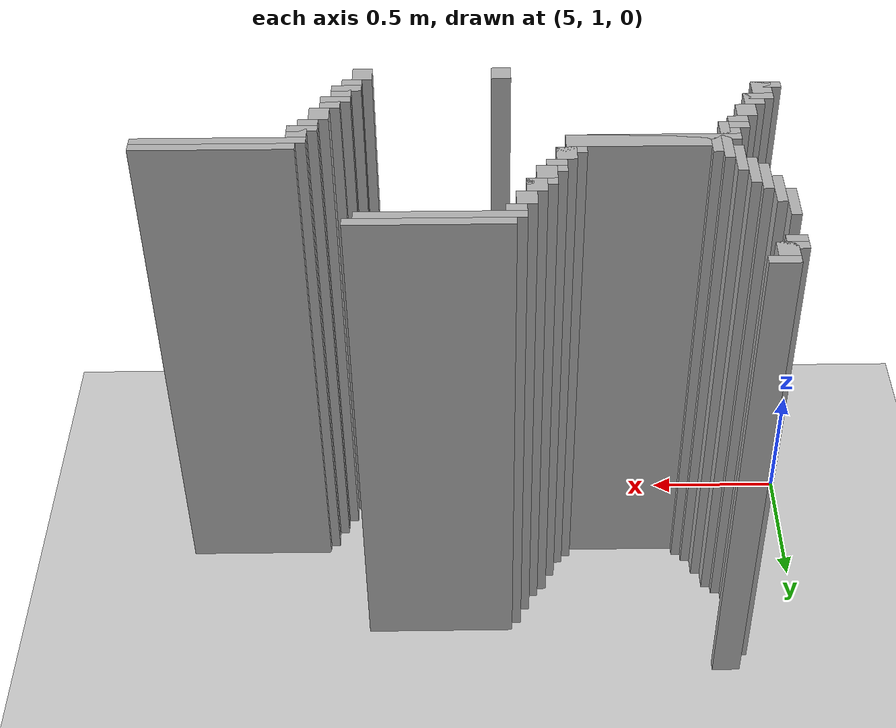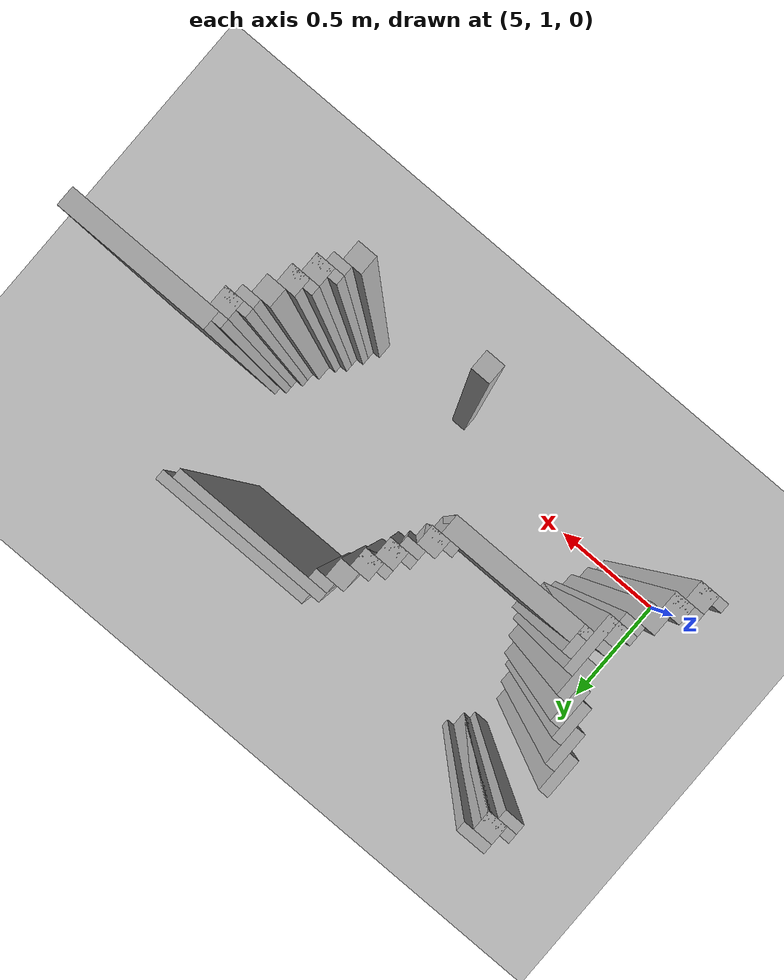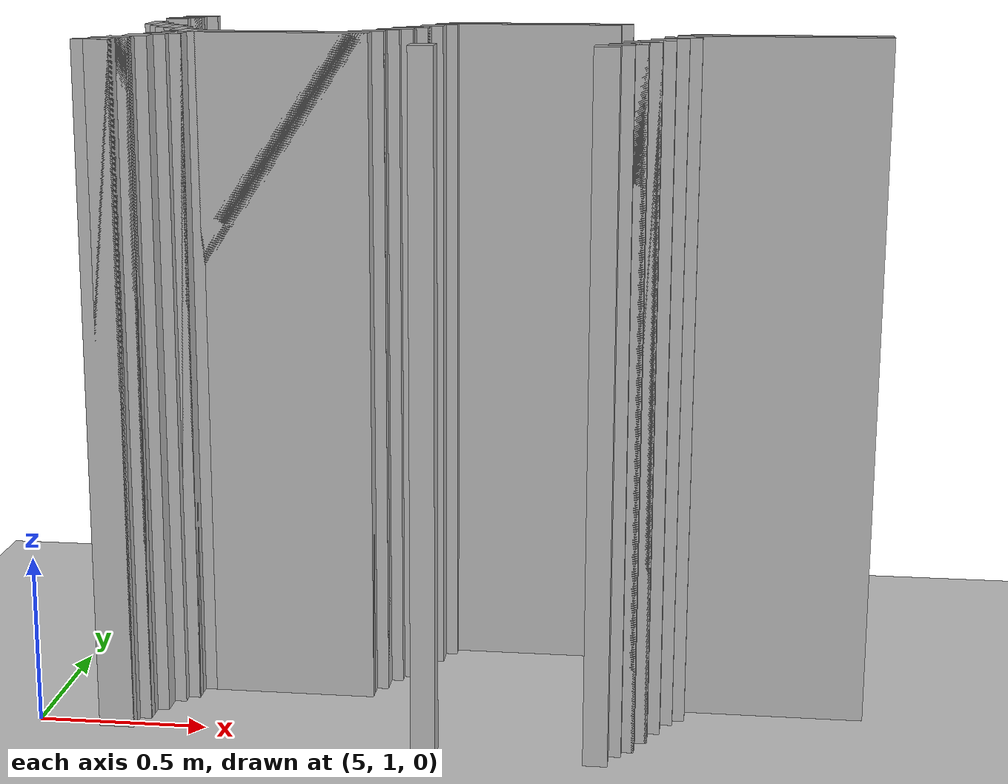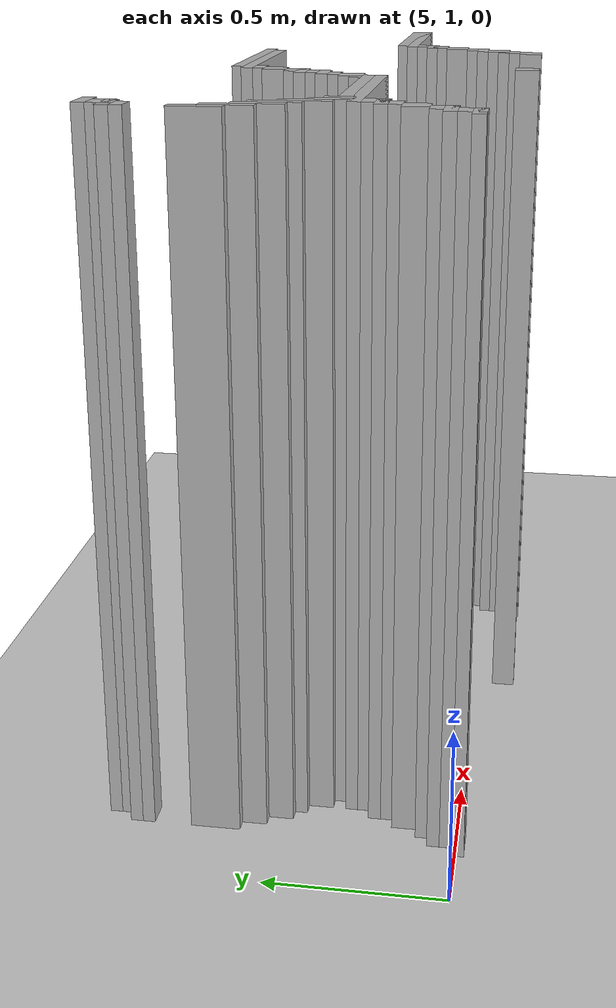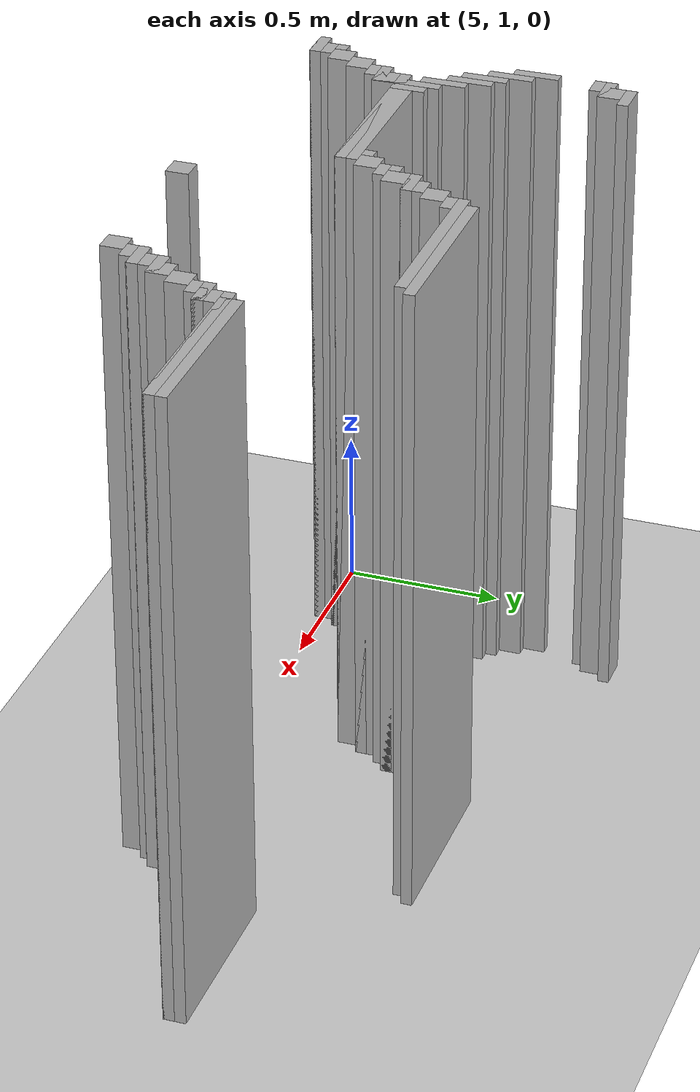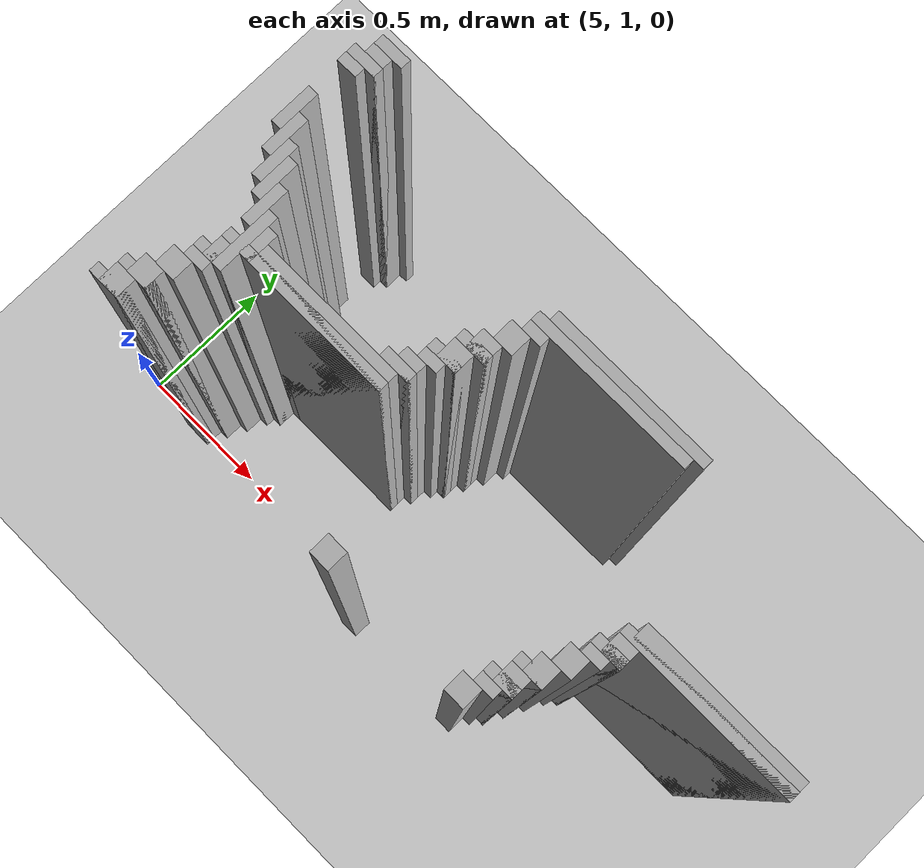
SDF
<sdf version="1.6">
 <world name="slam_world">
  <model name="ground_plane">
   <static>true</static>
   <link name="link">
    <collision name="collision">
     <geometry><plane><normal>0 0 1</normal><size>100 100</size></plane></geometry>
    </collision>
    <visual name="visual">
     <geometry><plane><normal>0 0 1</normal><size>100 100</size></plane></geometry>
     <material>
      <ambient>0.8 0.8 0.8 1</ambient>
      <diffuse>0.8 0.8 0.8 1</diffuse>
      <specular>0.8 0.8 0.8 1</specular>
     </material>
    </visual>
   </link>
  </model>
  <model name="wall_5076">
   <static>true</static>
   <pose>5.307424593967517 1.9663573085846866 1.0 0 0 0</pose>
   <link name="link">
    <collision name="collision">
     <geometry><box><size>0.10440835266821345 0.03480278422273782 2.0</size></box></geometry>
    </collision>
    <visual name="visual">
     <geometry><box><size>0.10440835266821345 0.03480278422273782 2.0</size></box></geometry>
     <material><ambient>0.5 0.5 0.5 1</ambient><diffuse>0.7 0.7 0.7 1</diffuse></material>
    </visual>
   </link>
  </model>
  <model name="wall_5087">
   <static>true</static>
   <pose>5.290023201856148 1.91415313225058 1.0 0 0 0</pose>
   <link name="link">
    <collision name="collision">
     <geometry><box><size>0.06960556844547564 0.06960556844547564 2.0</size></box></geometry>
    </collision>
    <visual name="visual">
     <geometry><box><size>0.06960556844547564 0.06960556844547564 2.0</size></box></geometry>
     <material><ambient>0.5 0.5 0.5 1</ambient><diffuse>0.7 0.7 0.7 1</diffuse></material>
    </visual>
   </link>
  </model>
  <model name="wall_5099">
   <static>true</static>
   <pose>5.27262180974478 1.896751740139211 1.0 0 0 0</pose>
   <link name="link">
    <collision name="collision">
     <geometry><box><size>0.10440835266821345 0.03480278422273782 2.0</size></box></geometry>
    </collision>
    <visual name="visual">
     <geometry><box><size>0.10440835266821345 0.03480278422273782 2.0</size></box></geometry>
     <material><ambient>0.5 0.5 0.5 1</ambient><diffuse>0.7 0.7 0.7 1</diffuse></material>
    </visual>
   </link>
  </model>
  <model name="wall_5109">
   <static>true</static>
   <pose>5.25522041763341 1.8619489559164732 1.0 0 0 0</pose>
   <link name="link">
    <collision name="collision">
     <geometry><box><size>0.06960556844547564 0.03480278422273782 2.0</size></box></geometry>
    </collision>
    <visual name="visual">
     <geometry><box><size>0.06960556844547564 0.03480278422273782 2.0</size></box></geometry>
     <material><ambient>0.5 0.5 0.5 1</ambient><diffuse>0.7 0.7 0.7 1</diffuse></material>
    </visual>
   </link>
  </model>
  <model name="wall_5143">
   <static>true</static>
   <pose>6.403712296983758 1.75754060324826 1.0 0 0 0</pose>
   <link name="link">
    <collision name="collision">
     <geometry><box><size>0.5568445475638051 0.03480278422273782 2.0</size></box></geometry>
    </collision>
    <visual name="visual">
     <geometry><box><size>0.5568445475638051 0.03480278422273782 2.0</size></box></geometry>
     <material><ambient>0.5 0.5 0.5 1</ambient><diffuse>0.7 0.7 0.7 1</diffuse></material>
    </visual>
   </link>
  </model>
  <model name="wall_5153">
   <static>true</static>
   <pose>5.237819025522041 1.6705336426914152 1.0 0 0 0</pose>
   <link name="link">
    <collision name="collision">
     <geometry><box><size>0.03480278422273782 0.13921113689095127 2.0</size></box></geometry>
    </collision>
    <visual name="visual">
     <geometry><box><size>0.03480278422273782 0.13921113689095127 2.0</size></box></geometry>
     <material><ambient>0.5 0.5 0.5 1</ambient><diffuse>0.7 0.7 0.7 1</diffuse></material>
    </visual>
   </link>
  </model>
  <model name="wall_5154">
   <static>true</static>
   <pose>6.368909512761021 1.722737819025522 1.0 0 0 0</pose>
   <link name="link">
    <collision name="collision">
     <geometry><box><size>0.5568445475638051 0.03480278422273782 2.0</size></box></geometry>
    </collision>
    <visual name="visual">
     <geometry><box><size>0.5568445475638051 0.03480278422273782 2.0</size></box></geometry>
     <material><ambient>0.5 0.5 0.5 1</ambient><diffuse>0.7 0.7 0.7 1</diffuse></material>
    </visual>
   </link>
  </model>
  <model name="wall_5168">
   <static>true</static>
   <pose>6.125290023201856 1.6879350348027842 1.0 0 0 0</pose>
   <link name="link">
    <collision name="collision">
     <geometry><box><size>0.06960556844547564 0.03480278422273782 2.0</size></box></geometry>
    </collision>
    <visual name="visual">
     <geometry><box><size>0.06960556844547564 0.03480278422273782 2.0</size></box></geometry>
     <material><ambient>0.5 0.5 0.5 1</ambient><diffuse>0.7 0.7 0.7 1</diffuse></material>
    </visual>
   </link>
  </model>
  <model name="wall_5183">
   <static>true</static>
   <pose>5.27262180974478 1.6009280742459395 1.0 0 0 0</pose>
   <link name="link">
    <collision name="collision">
     <geometry><box><size>0.03480278422273782 0.13921113689095127 2.0</size></box></geometry>
    </collision>
    <visual name="visual">
     <geometry><box><size>0.03480278422273782 0.13921113689095127 2.0</size></box></geometry>
     <material><ambient>0.5 0.5 0.5 1</ambient><diffuse>0.7 0.7 0.7 1</diffuse></material>
    </visual>
   </link>
  </model>
  <model name="wall_5184">
   <static>true</static>
   <pose>6.090487238979118 1.6357308584686774 1.0 0 0 0</pose>
   <link name="link">
    <collision name="collision">
     <geometry><box><size>0.06960556844547564 0.06960556844547564 2.0</size></box></geometry>
    </collision>
    <visual name="visual">
     <geometry><box><size>0.06960556844547564 0.06960556844547564 2.0</size></box></geometry>
     <material><ambient>0.5 0.5 0.5 1</ambient><diffuse>0.7 0.7 0.7 1</diffuse></material>
    </visual>
   </link>
  </model>
  <model name="wall_5199">
   <static>true</static>
   <pose>5.307424593967517 1.531322505800464 1.0 0 0 0</pose>
   <link name="link">
    <collision name="collision">
     <geometry><box><size>0.03480278422273782 0.13921113689095127 2.0</size></box></geometry>
    </collision>
    <visual name="visual">
     <geometry><box><size>0.03480278422273782 0.13921113689095127 2.0</size></box></geometry>
     <material><ambient>0.5 0.5 0.5 1</ambient><diffuse>0.7 0.7 0.7 1</diffuse></material>
    </visual>
   </link>
  </model>
  <model name="wall_5200">
   <static>true</static>
   <pose>6.05568445475638 1.5661252900232019 1.0 0 0 0</pose>
   <link name="link">
    <collision name="collision">
     <geometry><box><size>0.06960556844547564 0.06960556844547564 2.0</size></box></geometry>
    </collision>
    <visual name="visual">
     <geometry><box><size>0.06960556844547564 0.06960556844547564 2.0</size></box></geometry>
     <material><ambient>0.5 0.5 0.5 1</ambient><diffuse>0.7 0.7 0.7 1</diffuse></material>
    </visual>
   </link>
  </model>
  <model name="wall_5215">
   <static>true</static>
   <pose>5.342227378190255 1.4965197215777262 1.0 0 0 0</pose>
   <link name="link">
    <collision name="collision">
     <geometry><box><size>0.03480278422273782 0.13921113689095127 2.0</size></box></geometry>
    </collision>
    <visual name="visual">
     <geometry><box><size>0.03480278422273782 0.13921113689095127 2.0</size></box></geometry>
     <material><ambient>0.5 0.5 0.5 1</ambient><diffuse>0.7 0.7 0.7 1</diffuse></material>
    </visual>
   </link>
  </model>
  <model name="wall_5216">
   <static>true</static>
   <pose>6.038283062645012 1.548723897911833 1.0 0 0 0</pose>
   <link name="link">
    <collision name="collision">
     <geometry><box><size>0.10440835266821345 0.03480278422273782 2.0</size></box></geometry>
    </collision>
    <visual name="visual">
     <geometry><box><size>0.10440835266821345 0.03480278422273782 2.0</size></box></geometry>
     <material><ambient>0.5 0.5 0.5 1</ambient><diffuse>0.7 0.7 0.7 1</diffuse></material>
    </visual>
   </link>
  </model>
  <model name="wall_5231">
   <static>true</static>
   <pose>6.020881670533642 1.4965197215777262 1.0 0 0 0</pose>
   <link name="link">
    <collision name="collision">
     <geometry><box><size>0.06960556844547564 0.06960556844547564 2.0</size></box></geometry>
    </collision>
    <visual name="visual">
     <geometry><box><size>0.06960556844547564 0.06960556844547564 2.0</size></box></geometry>
     <material><ambient>0.5 0.5 0.5 1</ambient><diffuse>0.7 0.7 0.7 1</diffuse></material>
    </visual>
   </link>
  </model>
  <model name="wall_5244">
   <static>true</static>
   <pose>5.377030162412993 1.4269141531322505 1.0 0 0 0</pose>
   <link name="link">
    <collision name="collision">
     <geometry><box><size>0.03480278422273782 0.13921113689095127 2.0</size></box></geometry>
    </collision>
    <visual name="visual">
     <geometry><box><size>0.03480278422273782 0.13921113689095127 2.0</size></box></geometry>
     <material><ambient>0.5 0.5 0.5 1</ambient><diffuse>0.7 0.7 0.7 1</diffuse></material>
    </visual>
   </link>
  </model>
  <model name="wall_5245">
   <static>true</static>
   <pose>6.003480278422273 1.4791183294663572 1.0 0 0 0</pose>
   <link name="link">
    <collision name="collision">
     <geometry><box><size>0.10440835266821345 0.03480278422273782 2.0</size></box></geometry>
    </collision>
    <visual name="visual">
     <geometry><box><size>0.10440835266821345 0.03480278422273782 2.0</size></box></geometry>
     <material><ambient>0.5 0.5 0.5 1</ambient><diffuse>0.7 0.7 0.7 1</diffuse></material>
    </visual>
   </link>
  </model>
  <model name="wall_5259">
   <static>true</static>
   <pose>5.986078886310905 1.4443155452436194 1.0 0 0 0</pose>
   <link name="link">
    <collision name="collision">
     <geometry><box><size>0.06960556844547564 0.03480278422273782 2.0</size></box></geometry>
    </collision>
    <visual name="visual">
     <geometry><box><size>0.06960556844547564 0.03480278422273782 2.0</size></box></geometry>
     <material><ambient>0.5 0.5 0.5 1</ambient><diffuse>0.7 0.7 0.7 1</diffuse></material>
    </visual>
   </link>
  </model>
  <model name="wall_5270">
   <static>true</static>
   <pose>5.41183294663573 1.322505800464037 1.0 0 0 0</pose>
   <link name="link">
    <collision name="collision">
     <geometry><box><size>0.03480278422273782 0.2088167053364269 2.0</size></box></geometry>
    </collision>
    <visual name="visual">
     <geometry><box><size>0.03480278422273782 0.2088167053364269 2.0</size></box></geometry>
     <material><ambient>0.5 0.5 0.5 1</ambient><diffuse>0.7 0.7 0.7 1</diffuse></material>
    </visual>
   </link>
  </model>
  <model name="wall_5271">
   <static>true</static>
   <pose>5.951276102088166 1.3921113689095126 1.0 0 0 0</pose>
   <link name="link">
    <collision name="collision">
     <geometry><box><size>0.06960556844547564 0.06960556844547564 2.0</size></box></geometry>
    </collision>
    <visual name="visual">
     <geometry><box><size>0.06960556844547564 0.06960556844547564 2.0</size></box></geometry>
     <material><ambient>0.5 0.5 0.5 1</ambient><diffuse>0.7 0.7 0.7 1</diffuse></material>
    </visual>
   </link>
  </model>
  <model name="wall_5284">
   <static>true</static>
   <pose>5.4466357308584685 1.339907192575406 1.0 0 0 0</pose>
   <link name="link">
    <collision name="collision">
     <geometry><box><size>0.03480278422273782 0.10440835266821345 2.0</size></box></geometry>
    </collision>
    <visual name="visual">
     <geometry><box><size>0.03480278422273782 0.10440835266821345 2.0</size></box></geometry>
     <material><ambient>0.5 0.5 0.5 1</ambient><diffuse>0.7 0.7 0.7 1</diffuse></material>
    </visual>
   </link>
  </model>
  <model name="wall_5285">
   <static>true</static>
   <pose>5.933874709976798 1.3747099767981439 1.0 0 0 0</pose>
   <link name="link">
    <collision name="collision">
     <geometry><box><size>0.10440835266821345 0.03480278422273782 2.0</size></box></geometry>
    </collision>
    <visual name="visual">
     <geometry><box><size>0.10440835266821345 0.03480278422273782 2.0</size></box></geometry>
     <material><ambient>0.5 0.5 0.5 1</ambient><diffuse>0.7 0.7 0.7 1</diffuse></material>
    </visual>
   </link>
  </model>
  <model name="wall_5298">
   <static>true</static>
   <pose>5.707656612529002 1.322505800464037 1.0 0 0 0</pose>
   <link name="link">
    <collision name="collision">
     <geometry><box><size>0.4872389791183295 0.06960556844547564 2.0</size></box></geometry>
    </collision>
    <visual name="visual">
     <geometry><box><size>0.4872389791183295 0.06960556844547564 2.0</size></box></geometry>
     <material><ambient>0.5 0.5 0.5 1</ambient><diffuse>0.7 0.7 0.7 1</diffuse></material>
    </visual>
   </link>
  </model>
  <model name="wall_5299">
   <static>true</static>
   <pose>7.134570765661253 1.322505800464037 1.0 0 0 0</pose>
   <link name="link">
    <collision name="collision">
     <geometry><box><size>0.5568445475638051 0.06960556844547564 2.0</size></box></geometry>
    </collision>
    <visual name="visual">
     <geometry><box><size>0.5568445475638051 0.06960556844547564 2.0</size></box></geometry>
     <material><ambient>0.5 0.5 0.5 1</ambient><diffuse>0.7 0.7 0.7 1</diffuse></material>
    </visual>
   </link>
  </model>
  <model name="wall_5310">
   <static>true</static>
   <pose>5.655452436194896 1.3051044083526682 1.0 0 0 0</pose>
   <link name="link">
    <collision name="collision">
     <geometry><box><size>0.5916473317865429 0.03480278422273782 2.0</size></box></geometry>
    </collision>
    <visual name="visual">
     <geometry><box><size>0.5916473317865429 0.03480278422273782 2.0</size></box></geometry>
     <material><ambient>0.5 0.5 0.5 1</ambient><diffuse>0.7 0.7 0.7 1</diffuse></material>
    </visual>
   </link>
  </model>
  <model name="wall_5311">
   <static>true</static>
   <pose>7.117169373549884 1.3051044083526682 1.0 0 0 0</pose>
   <link name="link">
    <collision name="collision">
     <geometry><box><size>0.5916473317865429 0.03480278422273782 2.0</size></box></geometry>
    </collision>
    <visual name="visual">
     <geometry><box><size>0.5916473317865429 0.03480278422273782 2.0</size></box></geometry>
     <material><ambient>0.5 0.5 0.5 1</ambient><diffuse>0.7 0.7 0.7 1</diffuse></material>
    </visual>
   </link>
  </model>
  <model name="wall_5322">
   <static>true</static>
   <pose>5.3944315545243615 1.2529002320185614 1.0 0 0 0</pose>
   <link name="link">
    <collision name="collision">
     <geometry><box><size>0.06960556844547564 0.06960556844547564 2.0</size></box></geometry>
    </collision>
    <visual name="visual">
     <geometry><box><size>0.06960556844547564 0.06960556844547564 2.0</size></box></geometry>
     <material><ambient>0.5 0.5 0.5 1</ambient><diffuse>0.7 0.7 0.7 1</diffuse></material>
    </visual>
   </link>
  </model>
  <model name="wall_5323">
   <static>true</static>
   <pose>6.85614849187935 1.2529002320185614 1.0 0 0 0</pose>
   <link name="link">
    <collision name="collision">
     <geometry><box><size>0.06960556844547564 0.06960556844547564 2.0</size></box></geometry>
    </collision>
    <visual name="visual">
     <geometry><box><size>0.06960556844547564 0.06960556844547564 2.0</size></box></geometry>
     <material><ambient>0.5 0.5 0.5 1</ambient><diffuse>0.7 0.7 0.7 1</diffuse></material>
    </visual>
   </link>
  </model>
  <model name="wall_5336">
   <static>true</static>
   <pose>5.377030162412993 1.2354988399071924 1.0 0 0 0</pose>
   <link name="link">
    <collision name="collision">
     <geometry><box><size>0.10440835266821345 0.03480278422273782 2.0</size></box></geometry>
    </collision>
    <visual name="visual">
     <geometry><box><size>0.10440835266821345 0.03480278422273782 2.0</size></box></geometry>
     <material><ambient>0.5 0.5 0.5 1</ambient><diffuse>0.7 0.7 0.7 1</diffuse></material>
    </visual>
   </link>
  </model>
  <model name="wall_5337">
   <static>true</static>
   <pose>6.838747099767981 1.2354988399071924 1.0 0 0 0</pose>
   <link name="link">
    <collision name="collision">
     <geometry><box><size>0.10440835266821345 0.03480278422273782 2.0</size></box></geometry>
    </collision>
    <visual name="visual">
     <geometry><box><size>0.10440835266821345 0.03480278422273782 2.0</size></box></geometry>
     <material><ambient>0.5 0.5 0.5 1</ambient><diffuse>0.7 0.7 0.7 1</diffuse></material>
    </visual>
   </link>
  </model>
  <model name="wall_5347">
   <static>true</static>
   <pose>5.359628770301624 1.2006960556844548 1.0 0 0 0</pose>
   <link name="link">
    <collision name="collision">
     <geometry><box><size>0.06960556844547564 0.03480278422273782 2.0</size></box></geometry>
    </collision>
    <visual name="visual">
     <geometry><box><size>0.06960556844547564 0.03480278422273782 2.0</size></box></geometry>
     <material><ambient>0.5 0.5 0.5 1</ambient><diffuse>0.7 0.7 0.7 1</diffuse></material>
    </visual>
   </link>
  </model>
  <model name="wall_5348">
   <static>true</static>
   <pose>6.821345707656612 1.2006960556844548 1.0 0 0 0</pose>
   <link name="link">
    <collision name="collision">
     <geometry><box><size>0.06960556844547564 0.03480278422273782 2.0</size></box></geometry>
    </collision>
    <visual name="visual">
     <geometry><box><size>0.06960556844547564 0.03480278422273782 2.0</size></box></geometry>
     <material><ambient>0.5 0.5 0.5 1</ambient><diffuse>0.7 0.7 0.7 1</diffuse></material>
    </visual>
   </link>
  </model>
  <model name="wall_5359">
   <static>true</static>
   <pose>5.324825986078886 1.148491879350348 1.0 0 0 0</pose>
   <link name="link">
    <collision name="collision">
     <geometry><box><size>0.06960556844547564 0.06960556844547564 2.0</size></box></geometry>
    </collision>
    <visual name="visual">
     <geometry><box><size>0.06960556844547564 0.06960556844547564 2.0</size></box></geometry>
     <material><ambient>0.5 0.5 0.5 1</ambient><diffuse>0.7 0.7 0.7 1</diffuse></material>
    </visual>
   </link>
  </model>
  <model name="wall_5360">
   <static>true</static>
   <pose>6.786542923433874 1.148491879350348 1.0 0 0 0</pose>
   <link name="link">
    <collision name="collision">
     <geometry><box><size>0.06960556844547564 0.06960556844547564 2.0</size></box></geometry>
    </collision>
    <visual name="visual">
     <geometry><box><size>0.06960556844547564 0.06960556844547564 2.0</size></box></geometry>
     <material><ambient>0.5 0.5 0.5 1</ambient><diffuse>0.7 0.7 0.7 1</diffuse></material>
    </visual>
   </link>
  </model>
  <model name="wall_5373">
   <static>true</static>
   <pose>5.290023201856148 1.0788863109048723 1.0 0 0 0</pose>
   <link name="link">
    <collision name="collision">
     <geometry><box><size>0.06960556844547564 0.06960556844547564 2.0</size></box></geometry>
    </collision>
    <visual name="visual">
     <geometry><box><size>0.06960556844547564 0.06960556844547564 2.0</size></box></geometry>
     <material><ambient>0.5 0.5 0.5 1</ambient><diffuse>0.7 0.7 0.7 1</diffuse></material>
    </visual>
   </link>
  </model>
  <model name="wall_5374">
   <static>true</static>
   <pose>6.751740139211137 1.0788863109048723 1.0 0 0 0</pose>
   <link name="link">
    <collision name="collision">
     <geometry><box><size>0.06960556844547564 0.06960556844547564 2.0</size></box></geometry>
    </collision>
    <visual name="visual">
     <geometry><box><size>0.06960556844547564 0.06960556844547564 2.0</size></box></geometry>
     <material><ambient>0.5 0.5 0.5 1</ambient><diffuse>0.7 0.7 0.7 1</diffuse></material>
    </visual>
   </link>
  </model>
  <model name="wall_5387">
   <static>true</static>
   <pose>5.27262180974478 1.0614849187935034 1.0 0 0 0</pose>
   <link name="link">
    <collision name="collision">
     <geometry><box><size>0.10440835266821345 0.03480278422273782 2.0</size></box></geometry>
    </collision>
    <visual name="visual">
     <geometry><box><size>0.10440835266821345 0.03480278422273782 2.0</size></box></geometry>
     <material><ambient>0.5 0.5 0.5 1</ambient><diffuse>0.7 0.7 0.7 1</diffuse></material>
    </visual>
   </link>
  </model>
  <model name="wall_5388">
   <static>true</static>
   <pose>6.734338747099768 1.0614849187935034 1.0 0 0 0</pose>
   <link name="link">
    <collision name="collision">
     <geometry><box><size>0.10440835266821345 0.03480278422273782 2.0</size></box></geometry>
    </collision>
    <visual name="visual">
     <geometry><box><size>0.10440835266821345 0.03480278422273782 2.0</size></box></geometry>
     <material><ambient>0.5 0.5 0.5 1</ambient><diffuse>0.7 0.7 0.7 1</diffuse></material>
    </visual>
   </link>
  </model>
  <model name="wall_5397">
   <static>true</static>
   <pose>5.25522041763341 1.0092807424593968 1.0 0 0 0</pose>
   <link name="link">
    <collision name="collision">
     <geometry><box><size>0.06960556844547564 0.06960556844547564 2.0</size></box></geometry>
    </collision>
    <visual name="visual">
     <geometry><box><size>0.06960556844547564 0.06960556844547564 2.0</size></box></geometry>
     <material><ambient>0.5 0.5 0.5 1</ambient><diffuse>0.7 0.7 0.7 1</diffuse></material>
    </visual>
   </link>
  </model>
  <model name="wall_5398">
   <static>true</static>
   <pose>6.716937354988398 1.0092807424593968 1.0 0 0 0</pose>
   <link name="link">
    <collision name="collision">
     <geometry><box><size>0.06960556844547564 0.06960556844547564 2.0</size></box></geometry>
    </collision>
    <visual name="visual">
     <geometry><box><size>0.06960556844547564 0.06960556844547564 2.0</size></box></geometry>
     <material><ambient>0.5 0.5 0.5 1</ambient><diffuse>0.7 0.7 0.7 1</diffuse></material>
    </visual>
   </link>
  </model>
  <model name="wall_5407">
   <static>true</static>
   <pose>5.237819025522041 0.9918793503480278 1.0 0 0 0</pose>
   <link name="link">
    <collision name="collision">
     <geometry><box><size>0.10440835266821345 0.03480278422273782 2.0</size></box></geometry>
    </collision>
    <visual name="visual">
     <geometry><box><size>0.10440835266821345 0.03480278422273782 2.0</size></box></geometry>
     <material><ambient>0.5 0.5 0.5 1</ambient><diffuse>0.7 0.7 0.7 1</diffuse></material>
    </visual>
   </link>
  </model>
  <model name="wall_5408">
   <static>true</static>
   <pose>6.69953596287703 0.9918793503480278 1.0 0 0 0</pose>
   <link name="link">
    <collision name="collision">
     <geometry><box><size>0.10440835266821345 0.03480278422273782 2.0</size></box></geometry>
    </collision>
    <visual name="visual">
     <geometry><box><size>0.10440835266821345 0.03480278422273782 2.0</size></box></geometry>
     <material><ambient>0.5 0.5 0.5 1</ambient><diffuse>0.7 0.7 0.7 1</diffuse></material>
    </visual>
   </link>
  </model>
  <model name="wall_5418">
   <static>true</static>
   <pose>6.682134570765661 0.95707656612529 1.0 0 0 0</pose>
   <link name="link">
    <collision name="collision">
     <geometry><box><size>0.06960556844547564 0.03480278422273782 2.0</size></box></geometry>
    </collision>
    <visual name="visual">
     <geometry><box><size>0.06960556844547564 0.03480278422273782 2.0</size></box></geometry>
     <material><ambient>0.5 0.5 0.5 1</ambient><diffuse>0.7 0.7 0.7 1</diffuse></material>
    </visual>
   </link>
  </model>
  <model name="wall_5426">
   <static>true</static>
   <pose>6.1600928074245935 0.9048723897911832 1.0 0 0 0</pose>
   <link name="link">
    <collision name="collision">
     <geometry><box><size>0.06960556844547564 0.06960556844547564 2.0</size></box></geometry>
    </collision>
    <visual name="visual">
     <geometry><box><size>0.06960556844547564 0.06960556844547564 2.0</size></box></geometry>
     <material><ambient>0.5 0.5 0.5 1</ambient><diffuse>0.7 0.7 0.7 1</diffuse></material>
    </visual>
   </link>
  </model>
  <model name="wall_5427">
   <static>true</static>
   <pose>6.647331786542924 0.9048723897911832 1.0 0 0 0</pose>
   <link name="link">
    <collision name="collision">
     <geometry><box><size>0.06960556844547564 0.06960556844547564 2.0</size></box></geometry>
    </collision>
    <visual name="visual">
     <geometry><box><size>0.06960556844547564 0.06960556844547564 2.0</size></box></geometry>
     <material><ambient>0.5 0.5 0.5 1</ambient><diffuse>0.7 0.7 0.7 1</diffuse></material>
    </visual>
   </link>
  </model>
 </world>
</sdf>
